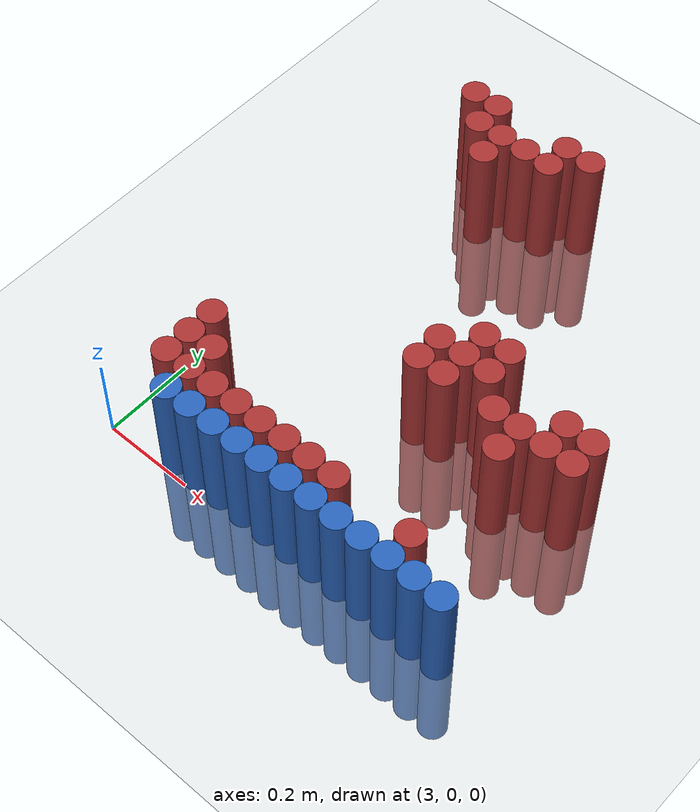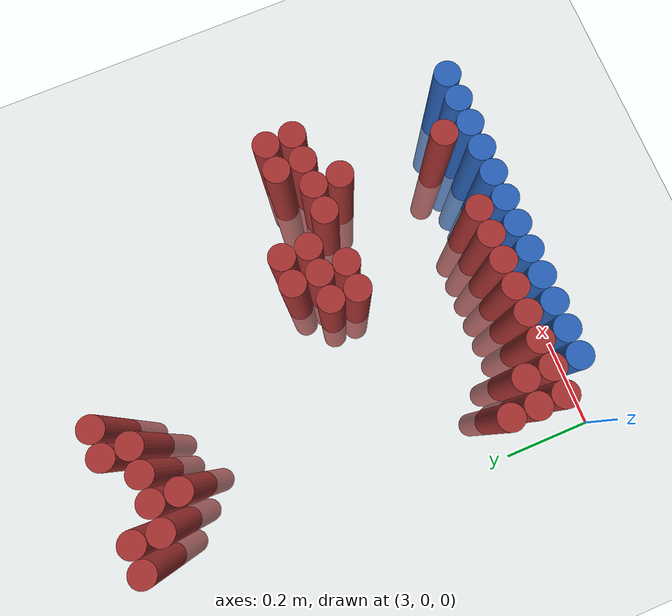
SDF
<sdf version="1.6">
 <world name="default">
  <model name="ground_plane">
   <static>1</static>
   <link name="link">
    <collision name="collision">
     <geometry><plane><normal>0 0 1</normal><size>100 100</size></plane></geometry>
     <surface><friction><ode><mu>100</mu><mu2>50</mu2></ode></friction></surface>
    </collision>
    <visual name="visual">
     <cast_shadows>0</cast_shadows>
     <geometry><plane><normal>0 0 1</normal><size>100 100</size></plane></geometry>
     <material>
      <script><uri>file://media/materials/scripts/gazebo.material</uri><name>Gazebo/Grey</name></script>
     </material>
    </visual>
   </link>
  </model>
  <model name="unit_cylinder_207">
   <static>1</static>
   <pose>3.090000 0.990000 0.000000 0.000000 0.000000 0.000000</pose>
   <link name="link">
    <inertial>
     <mass>1</mass>
     <inertia><ixx>0.145833</ixx><ixy>0</ixy><ixz>0</ixz><iyy>0.145833</iyy><iyz>0</iyz><izz>0.125</izz></inertia>
    </inertial>
    <collision name="collision">
     <geometry><cylinder><radius>0.030000</radius><length>0.5</length></cylinder></geometry>
    </collision>
    <visual name="visual">
     <geometry><cylinder><radius>0.030000</radius><length>0.5</length></cylinder></geometry>
     <material>
      <ambient>0.648000 0.192000 0.192000 1</ambient>
      <diffuse>0.648000 0.192000 0.192000 1</diffuse>
     </material>
     <material>
      <script><name>Gazebo/Grey</name><uri>file://media/materials/scripts/gazebo.material</uri></script>
     </material>
    </visual>
   </link>
  </model>
  <model name="unit_cylinder_208">
   <static>1</static>
   <pose>3.150000 0.990000 0.000000 0.000000 0.000000 0.000000</pose>
   <link name="link">
    <inertial>
     <mass>1</mass>
     <inertia><ixx>0.145833</ixx><ixy>0</ixy><ixz>0</ixz><iyy>0.145833</iyy><iyz>0</iyz><izz>0.125</izz></inertia>
    </inertial>
    <collision name="collision">
     <geometry><cylinder><radius>0.030000</radius><length>0.5</length></cylinder></geometry>
    </collision>
    <visual name="visual">
     <geometry><cylinder><radius>0.030000</radius><length>0.5</length></cylinder></geometry>
     <material>
      <ambient>0.648000 0.192000 0.192000 1</ambient>
      <diffuse>0.648000 0.192000 0.192000 1</diffuse>
     </material>
     <material>
      <script><name>Gazebo/Grey</name><uri>file://media/materials/scripts/gazebo.material</uri></script>
     </material>
    </visual>
   </link>
  </model>
  <model name="unit_cylinder_209">
   <static>1</static>
   <pose>3.330000 0.990000 0.000000 0.000000 0.000000 0.000000</pose>
   <link name="link">
    <inertial>
     <mass>1</mass>
     <inertia><ixx>0.145833</ixx><ixy>0</ixy><ixz>0</ixz><iyy>0.145833</iyy><iyz>0</iyz><izz>0.125</izz></inertia>
    </inertial>
    <collision name="collision">
     <geometry><cylinder><radius>0.030000</radius><length>0.5</length></cylinder></geometry>
    </collision>
    <visual name="visual">
     <geometry><cylinder><radius>0.030000</radius><length>0.5</length></cylinder></geometry>
     <material>
      <ambient>0.648000 0.192000 0.192000 1</ambient>
      <diffuse>0.648000 0.192000 0.192000 1</diffuse>
     </material>
     <material>
      <script><name>Gazebo/Grey</name><uri>file://media/materials/scripts/gazebo.material</uri></script>
     </material>
    </visual>
   </link>
  </model>
  <model name="unit_cylinder_210">
   <static>1</static>
   <pose>3.390000 0.990000 0.000000 0.000000 0.000000 0.000000</pose>
   <link name="link">
    <inertial>
     <mass>1</mass>
     <inertia><ixx>0.145833</ixx><ixy>0</ixy><ixz>0</ixz><iyy>0.145833</iyy><iyz>0</iyz><izz>0.125</izz></inertia>
    </inertial>
    <collision name="collision">
     <geometry><cylinder><radius>0.030000</radius><length>0.5</length></cylinder></geometry>
    </collision>
    <visual name="visual">
     <geometry><cylinder><radius>0.030000</radius><length>0.5</length></cylinder></geometry>
     <material>
      <ambient>0.648000 0.192000 0.192000 1</ambient>
      <diffuse>0.648000 0.192000 0.192000 1</diffuse>
     </material>
     <material>
      <script><name>Gazebo/Grey</name><uri>file://media/materials/scripts/gazebo.material</uri></script>
     </material>
    </visual>
   </link>
  </model>
  <model name="unit_cylinder_214">
   <static>1</static>
   <pose>3.150000 0.930000 0.000000 0.000000 0.000000 0.000000</pose>
   <link name="link">
    <inertial>
     <mass>1</mass>
     <inertia><ixx>0.145833</ixx><ixy>0</ixy><ixz>0</ixz><iyy>0.145833</iyy><iyz>0</iyz><izz>0.125</izz></inertia>
    </inertial>
    <collision name="collision">
     <geometry><cylinder><radius>0.030000</radius><length>0.5</length></cylinder></geometry>
    </collision>
    <visual name="visual">
     <geometry><cylinder><radius>0.030000</radius><length>0.5</length></cylinder></geometry>
     <material>
      <ambient>0.648000 0.192000 0.192000 1</ambient>
      <diffuse>0.648000 0.192000 0.192000 1</diffuse>
     </material>
     <material>
      <script><name>Gazebo/Grey</name><uri>file://media/materials/scripts/gazebo.material</uri></script>
     </material>
    </visual>
   </link>
  </model>
  <model name="unit_cylinder_215">
   <static>1</static>
   <pose>3.210000 0.930000 0.000000 0.000000 0.000000 0.000000</pose>
   <link name="link">
    <inertial>
     <mass>1</mass>
     <inertia><ixx>0.145833</ixx><ixy>0</ixy><ixz>0</ixz><iyy>0.145833</iyy><iyz>0</iyz><izz>0.125</izz></inertia>
    </inertial>
    <collision name="collision">
     <geometry><cylinder><radius>0.030000</radius><length>0.5</length></cylinder></geometry>
    </collision>
    <visual name="visual">
     <geometry><cylinder><radius>0.030000</radius><length>0.5</length></cylinder></geometry>
     <material>
      <ambient>0.648000 0.192000 0.192000 1</ambient>
      <diffuse>0.648000 0.192000 0.192000 1</diffuse>
     </material>
     <material>
      <script><name>Gazebo/Grey</name><uri>file://media/materials/scripts/gazebo.material</uri></script>
     </material>
    </visual>
   </link>
  </model>
  <model name="unit_cylinder_216">
   <static>1</static>
   <pose>3.270000 0.930000 0.000000 0.000000 0.000000 0.000000</pose>
   <link name="link">
    <inertial>
     <mass>1</mass>
     <inertia><ixx>0.145833</ixx><ixy>0</ixy><ixz>0</ixz><iyy>0.145833</iyy><iyz>0</iyz><izz>0.125</izz></inertia>
    </inertial>
    <collision name="collision">
     <geometry><cylinder><radius>0.030000</radius><length>0.5</length></cylinder></geometry>
    </collision>
    <visual name="visual">
     <geometry><cylinder><radius>0.030000</radius><length>0.5</length></cylinder></geometry>
     <material>
      <ambient>0.648000 0.192000 0.192000 1</ambient>
      <diffuse>0.648000 0.192000 0.192000 1</diffuse>
     </material>
     <material>
      <script><name>Gazebo/Grey</name><uri>file://media/materials/scripts/gazebo.material</uri></script>
     </material>
    </visual>
   </link>
  </model>
  <model name="unit_cylinder_217">
   <static>1</static>
   <pose>3.330000 0.930000 0.000000 0.000000 0.000000 0.000000</pose>
   <link name="link">
    <inertial>
     <mass>1</mass>
     <inertia><ixx>0.145833</ixx><ixy>0</ixy><ixz>0</ixz><iyy>0.145833</iyy><iyz>0</iyz><izz>0.125</izz></inertia>
    </inertial>
    <collision name="collision">
     <geometry><cylinder><radius>0.030000</radius><length>0.5</length></cylinder></geometry>
    </collision>
    <visual name="visual">
     <geometry><cylinder><radius>0.030000</radius><length>0.5</length></cylinder></geometry>
     <material>
      <ambient>0.648000 0.192000 0.192000 1</ambient>
      <diffuse>0.648000 0.192000 0.192000 1</diffuse>
     </material>
     <material>
      <script><name>Gazebo/Grey</name><uri>file://media/materials/scripts/gazebo.material</uri></script>
     </material>
    </visual>
   </link>
  </model>
  <model name="unit_cylinder_226">
   <static>1</static>
   <pose>3.210000 0.870000 0.000000 0.000000 0.000000 0.000000</pose>
   <link name="link">
    <inertial>
     <mass>1</mass>
     <inertia><ixx>0.145833</ixx><ixy>0</ixy><ixz>0</ixz><iyy>0.145833</iyy><iyz>0</iyz><izz>0.125</izz></inertia>
    </inertial>
    <collision name="collision">
     <geometry><cylinder><radius>0.030000</radius><length>0.5</length></cylinder></geometry>
    </collision>
    <visual name="visual">
     <geometry><cylinder><radius>0.030000</radius><length>0.5</length></cylinder></geometry>
     <material>
      <ambient>0.648000 0.192000 0.192000 1</ambient>
      <diffuse>0.648000 0.192000 0.192000 1</diffuse>
     </material>
     <material>
      <script><name>Gazebo/Grey</name><uri>file://media/materials/scripts/gazebo.material</uri></script>
     </material>
    </visual>
   </link>
  </model>
  <model name="unit_cylinder_258">
   <static>1</static>
   <pose>3.510000 0.510000 0.000000 0.000000 0.000000 0.000000</pose>
   <link name="link">
    <inertial>
     <mass>1</mass>
     <inertia><ixx>0.145833</ixx><ixy>0</ixy><ixz>0</ixz><iyy>0.145833</iyy><iyz>0</iyz><izz>0.125</izz></inertia>
    </inertial>
    <collision name="collision">
     <geometry><cylinder><radius>0.030000</radius><length>0.5</length></cylinder></geometry>
    </collision>
    <visual name="visual">
     <geometry><cylinder><radius>0.030000</radius><length>0.5</length></cylinder></geometry>
     <material>
      <ambient>0.648000 0.192000 0.192000 1</ambient>
      <diffuse>0.648000 0.192000 0.192000 1</diffuse>
     </material>
     <material>
      <script><name>Gazebo/Grey</name><uri>file://media/materials/scripts/gazebo.material</uri></script>
     </material>
    </visual>
   </link>
  </model>
  <model name="unit_cylinder_259">
   <static>1</static>
   <pose>3.570000 0.510000 0.000000 0.000000 0.000000 0.000000</pose>
   <link name="link">
    <inertial>
     <mass>1</mass>
     <inertia><ixx>0.145833</ixx><ixy>0</ixy><ixz>0</ixz><iyy>0.145833</iyy><iyz>0</iyz><izz>0.125</izz></inertia>
    </inertial>
    <collision name="collision">
     <geometry><cylinder><radius>0.030000</radius><length>0.5</length></cylinder></geometry>
    </collision>
    <visual name="visual">
     <geometry><cylinder><radius>0.030000</radius><length>0.5</length></cylinder></geometry>
     <material>
      <ambient>0.648000 0.192000 0.192000 1</ambient>
      <diffuse>0.648000 0.192000 0.192000 1</diffuse>
     </material>
     <material>
      <script><name>Gazebo/Grey</name><uri>file://media/materials/scripts/gazebo.material</uri></script>
     </material>
    </visual>
   </link>
  </model>
  <model name="unit_cylinder_260">
   <static>1</static>
   <pose>3.450000 0.450000 0.000000 0.000000 0.000000 0.000000</pose>
   <link name="link">
    <inertial>
     <mass>1</mass>
     <inertia><ixx>0.145833</ixx><ixy>0</ixy><ixz>0</ixz><iyy>0.145833</iyy><iyz>0</iyz><izz>0.125</izz></inertia>
    </inertial>
    <collision name="collision">
     <geometry><cylinder><radius>0.030000</radius><length>0.5</length></cylinder></geometry>
    </collision>
    <visual name="visual">
     <geometry><cylinder><radius>0.030000</radius><length>0.5</length></cylinder></geometry>
     <material>
      <ambient>0.648000 0.192000 0.192000 1</ambient>
      <diffuse>0.648000 0.192000 0.192000 1</diffuse>
     </material>
     <material>
      <script><name>Gazebo/Grey</name><uri>file://media/materials/scripts/gazebo.material</uri></script>
     </material>
    </visual>
   </link>
  </model>
  <model name="unit_cylinder_261">
   <static>1</static>
   <pose>3.510000 0.450000 0.000000 0.000000 0.000000 0.000000</pose>
   <link name="link">
    <inertial>
     <mass>1</mass>
     <inertia><ixx>0.145833</ixx><ixy>0</ixy><ixz>0</ixz><iyy>0.145833</iyy><iyz>0</iyz><izz>0.125</izz></inertia>
    </inertial>
    <collision name="collision">
     <geometry><cylinder><radius>0.030000</radius><length>0.5</length></cylinder></geometry>
    </collision>
    <visual name="visual">
     <geometry><cylinder><radius>0.030000</radius><length>0.5</length></cylinder></geometry>
     <material>
      <ambient>0.648000 0.192000 0.192000 1</ambient>
      <diffuse>0.648000 0.192000 0.192000 1</diffuse>
     </material>
     <material>
      <script><name>Gazebo/Grey</name><uri>file://media/materials/scripts/gazebo.material</uri></script>
     </material>
    </visual>
   </link>
  </model>
  <model name="unit_cylinder_262">
   <static>1</static>
   <pose>3.570000 0.450000 0.000000 0.000000 0.000000 0.000000</pose>
   <link name="link">
    <inertial>
     <mass>1</mass>
     <inertia><ixx>0.145833</ixx><ixy>0</ixy><ixz>0</ixz><iyy>0.145833</iyy><iyz>0</iyz><izz>0.125</izz></inertia>
    </inertial>
    <collision name="collision">
     <geometry><cylinder><radius>0.030000</radius><length>0.5</length></cylinder></geometry>
    </collision>
    <visual name="visual">
     <geometry><cylinder><radius>0.030000</radius><length>0.5</length></cylinder></geometry>
     <material>
      <ambient>0.648000 0.192000 0.192000 1</ambient>
      <diffuse>0.648000 0.192000 0.192000 1</diffuse>
     </material>
     <material>
      <script><name>Gazebo/Grey</name><uri>file://media/materials/scripts/gazebo.material</uri></script>
     </material>
    </visual>
   </link>
  </model>
  <model name="unit_cylinder_263">
   <static>1</static>
   <pose>3.750000 0.450000 0.000000 0.000000 0.000000 0.000000</pose>
   <link name="link">
    <inertial>
     <mass>1</mass>
     <inertia><ixx>0.145833</ixx><ixy>0</ixy><ixz>0</ixz><iyy>0.145833</iyy><iyz>0</iyz><izz>0.125</izz></inertia>
    </inertial>
    <collision name="collision">
     <geometry><cylinder><radius>0.030000</radius><length>0.5</length></cylinder></geometry>
    </collision>
    <visual name="visual">
     <geometry><cylinder><radius>0.030000</radius><length>0.5</length></cylinder></geometry>
     <material>
      <ambient>0.648000 0.192000 0.192000 1</ambient>
      <diffuse>0.648000 0.192000 0.192000 1</diffuse>
     </material>
     <material>
      <script><name>Gazebo/Grey</name><uri>file://media/materials/scripts/gazebo.material</uri></script>
     </material>
    </visual>
   </link>
  </model>
  <model name="unit_cylinder_264">
   <static>1</static>
   <pose>3.810000 0.450000 0.000000 0.000000 0.000000 0.000000</pose>
   <link name="link">
    <inertial>
     <mass>1</mass>
     <inertia><ixx>0.145833</ixx><ixy>0</ixy><ixz>0</ixz><iyy>0.145833</iyy><iyz>0</iyz><izz>0.125</izz></inertia>
    </inertial>
    <collision name="collision">
     <geometry><cylinder><radius>0.030000</radius><length>0.5</length></cylinder></geometry>
    </collision>
    <visual name="visual">
     <geometry><cylinder><radius>0.030000</radius><length>0.5</length></cylinder></geometry>
     <material>
      <ambient>0.648000 0.192000 0.192000 1</ambient>
      <diffuse>0.648000 0.192000 0.192000 1</diffuse>
     </material>
     <material>
      <script><name>Gazebo/Grey</name><uri>file://media/materials/scripts/gazebo.material</uri></script>
     </material>
    </visual>
   </link>
  </model>
  <model name="unit_cylinder_265">
   <static>1</static>
   <pose>3.450000 0.390000 0.000000 0.000000 0.000000 0.000000</pose>
   <link name="link">
    <inertial>
     <mass>1</mass>
     <inertia><ixx>0.145833</ixx><ixy>0</ixy><ixz>0</ixz><iyy>0.145833</iyy><iyz>0</iyz><izz>0.125</izz></inertia>
    </inertial>
    <collision name="collision">
     <geometry><cylinder><radius>0.030000</radius><length>0.5</length></cylinder></geometry>
    </collision>
    <visual name="visual">
     <geometry><cylinder><radius>0.030000</radius><length>0.5</length></cylinder></geometry>
     <material>
      <ambient>0.648000 0.192000 0.192000 1</ambient>
      <diffuse>0.648000 0.192000 0.192000 1</diffuse>
     </material>
     <material>
      <script><name>Gazebo/Grey</name><uri>file://media/materials/scripts/gazebo.material</uri></script>
     </material>
    </visual>
   </link>
  </model>
  <model name="unit_cylinder_266">
   <static>1</static>
   <pose>3.510000 0.390000 0.000000 0.000000 0.000000 0.000000</pose>
   <link name="link">
    <inertial>
     <mass>1</mass>
     <inertia><ixx>0.145833</ixx><ixy>0</ixy><ixz>0</ixz><iyy>0.145833</iyy><iyz>0</iyz><izz>0.125</izz></inertia>
    </inertial>
    <collision name="collision">
     <geometry><cylinder><radius>0.030000</radius><length>0.5</length></cylinder></geometry>
    </collision>
    <visual name="visual">
     <geometry><cylinder><radius>0.030000</radius><length>0.5</length></cylinder></geometry>
     <material>
      <ambient>0.648000 0.192000 0.192000 1</ambient>
      <diffuse>0.648000 0.192000 0.192000 1</diffuse>
     </material>
     <material>
      <script><name>Gazebo/Grey</name><uri>file://media/materials/scripts/gazebo.material</uri></script>
     </material>
    </visual>
   </link>
  </model>
  <model name="unit_cylinder_267">
   <static>1</static>
   <pose>3.630000 0.390000 0.000000 0.000000 0.000000 0.000000</pose>
   <link name="link">
    <inertial>
     <mass>1</mass>
     <inertia><ixx>0.145833</ixx><ixy>0</ixy><ixz>0</ixz><iyy>0.145833</iyy><iyz>0</iyz><izz>0.125</izz></inertia>
    </inertial>
    <collision name="collision">
     <geometry><cylinder><radius>0.030000</radius><length>0.5</length></cylinder></geometry>
    </collision>
    <visual name="visual">
     <geometry><cylinder><radius>0.030000</radius><length>0.5</length></cylinder></geometry>
     <material>
      <ambient>0.648000 0.192000 0.192000 1</ambient>
      <diffuse>0.648000 0.192000 0.192000 1</diffuse>
     </material>
     <material>
      <script><name>Gazebo/Grey</name><uri>file://media/materials/scripts/gazebo.material</uri></script>
     </material>
    </visual>
   </link>
  </model>
  <model name="unit_cylinder_268">
   <static>1</static>
   <pose>3.690000 0.390000 0.000000 0.000000 0.000000 0.000000</pose>
   <link name="link">
    <inertial>
     <mass>1</mass>
     <inertia><ixx>0.145833</ixx><ixy>0</ixy><ixz>0</ixz><iyy>0.145833</iyy><iyz>0</iyz><izz>0.125</izz></inertia>
    </inertial>
    <collision name="collision">
     <geometry><cylinder><radius>0.030000</radius><length>0.5</length></cylinder></geometry>
    </collision>
    <visual name="visual">
     <geometry><cylinder><radius>0.030000</radius><length>0.5</length></cylinder></geometry>
     <material>
      <ambient>0.648000 0.192000 0.192000 1</ambient>
      <diffuse>0.648000 0.192000 0.192000 1</diffuse>
     </material>
     <material>
      <script><name>Gazebo/Grey</name><uri>file://media/materials/scripts/gazebo.material</uri></script>
     </material>
    </visual>
   </link>
  </model>
  <model name="unit_cylinder_269">
   <static>1</static>
   <pose>3.750000 0.390000 0.000000 0.000000 0.000000 0.000000</pose>
   <link name="link">
    <inertial>
     <mass>1</mass>
     <inertia><ixx>0.145833</ixx><ixy>0</ixy><ixz>0</ixz><iyy>0.145833</iyy><iyz>0</iyz><izz>0.125</izz></inertia>
    </inertial>
    <collision name="collision">
     <geometry><cylinder><radius>0.030000</radius><length>0.5</length></cylinder></geometry>
    </collision>
    <visual name="visual">
     <geometry><cylinder><radius>0.030000</radius><length>0.5</length></cylinder></geometry>
     <material>
      <ambient>0.648000 0.192000 0.192000 1</ambient>
      <diffuse>0.648000 0.192000 0.192000 1</diffuse>
     </material>
     <material>
      <script><name>Gazebo/Grey</name><uri>file://media/materials/scripts/gazebo.material</uri></script>
     </material>
    </visual>
   </link>
  </model>
  <model name="unit_cylinder_270">
   <static>1</static>
   <pose>3.810000 0.390000 0.000000 0.000000 0.000000 0.000000</pose>
   <link name="link">
    <inertial>
     <mass>1</mass>
     <inertia><ixx>0.145833</ixx><ixy>0</ixy><ixz>0</ixz><iyy>0.145833</iyy><iyz>0</iyz><izz>0.125</izz></inertia>
    </inertial>
    <collision name="collision">
     <geometry><cylinder><radius>0.030000</radius><length>0.5</length></cylinder></geometry>
    </collision>
    <visual name="visual">
     <geometry><cylinder><radius>0.030000</radius><length>0.5</length></cylinder></geometry>
     <material>
      <ambient>0.648000 0.192000 0.192000 1</ambient>
      <diffuse>0.648000 0.192000 0.192000 1</diffuse>
     </material>
     <material>
      <script><name>Gazebo/Grey</name><uri>file://media/materials/scripts/gazebo.material</uri></script>
     </material>
    </visual>
   </link>
  </model>
  <model name="unit_cylinder_271">
   <static>1</static>
   <pose>3.690000 0.330000 0.000000 0.000000 0.000000 0.000000</pose>
   <link name="link">
    <inertial>
     <mass>1</mass>
     <inertia><ixx>0.145833</ixx><ixy>0</ixy><ixz>0</ixz><iyy>0.145833</iyy><iyz>0</iyz><izz>0.125</izz></inertia>
    </inertial>
    <collision name="collision">
     <geometry><cylinder><radius>0.030000</radius><length>0.5</length></cylinder></geometry>
    </collision>
    <visual name="visual">
     <geometry><cylinder><radius>0.030000</radius><length>0.5</length></cylinder></geometry>
     <material>
      <ambient>0.648000 0.192000 0.192000 1</ambient>
      <diffuse>0.648000 0.192000 0.192000 1</diffuse>
     </material>
     <material>
      <script><name>Gazebo/Grey</name><uri>file://media/materials/scripts/gazebo.material</uri></script>
     </material>
    </visual>
   </link>
  </model>
  <model name="unit_cylinder_275">
   <static>1</static>
   <pose>3.090000 0.210000 0.000000 0.000000 0.000000 0.000000</pose>
   <link name="link">
    <inertial>
     <mass>1</mass>
     <inertia><ixx>0.145833</ixx><ixy>0</ixy><ixz>0</ixz><iyy>0.145833</iyy><iyz>0</iyz><izz>0.125</izz></inertia>
    </inertial>
    <collision name="collision">
     <geometry><cylinder><radius>0.030000</radius><length>0.5</length></cylinder></geometry>
    </collision>
    <visual name="visual">
     <geometry><cylinder><radius>0.030000</radius><length>0.5</length></cylinder></geometry>
     <material>
      <ambient>0.648000 0.192000 0.192000 1</ambient>
      <diffuse>0.648000 0.192000 0.192000 1</diffuse>
     </material>
     <material>
      <script><name>Gazebo/Grey</name><uri>file://media/materials/scripts/gazebo.material</uri></script>
     </material>
    </visual>
   </link>
  </model>
  <model name="unit_cylinder_283">
   <static>1</static>
   <pose>3.090000 0.150000 0.000000 0.000000 0.000000 0.000000</pose>
   <link name="link">
    <inertial>
     <mass>1</mass>
     <inertia><ixx>0.145833</ixx><ixy>0</ixy><ixz>0</ixz><iyy>0.145833</iyy><iyz>0</iyz><izz>0.125</izz></inertia>
    </inertial>
    <collision name="collision">
     <geometry><cylinder><radius>0.030000</radius><length>0.5</length></cylinder></geometry>
    </collision>
    <visual name="visual">
     <geometry><cylinder><radius>0.030000</radius><length>0.5</length></cylinder></geometry>
     <material>
      <ambient>0.648000 0.192000 0.192000 1</ambient>
      <diffuse>0.648000 0.192000 0.192000 1</diffuse>
     </material>
     <material>
      <script><name>Gazebo/Grey</name><uri>file://media/materials/scripts/gazebo.material</uri></script>
     </material>
    </visual>
   </link>
  </model>
  <model name="unit_cylinder_284">
   <static>1</static>
   <pose>3.150000 0.150000 0.000000 0.000000 0.000000 0.000000</pose>
   <link name="link">
    <inertial>
     <mass>1</mass>
     <inertia><ixx>0.145833</ixx><ixy>0</ixy><ixz>0</ixz><iyy>0.145833</iyy><iyz>0</iyz><izz>0.125</izz></inertia>
    </inertial>
    <collision name="collision">
     <geometry><cylinder><radius>0.030000</radius><length>0.5</length></cylinder></geometry>
    </collision>
    <visual name="visual">
     <geometry><cylinder><radius>0.030000</radius><length>0.5</length></cylinder></geometry>
     <material>
      <ambient>0.648000 0.192000 0.192000 1</ambient>
      <diffuse>0.648000 0.192000 0.192000 1</diffuse>
     </material>
     <material>
      <script><name>Gazebo/Grey</name><uri>file://media/materials/scripts/gazebo.material</uri></script>
     </material>
    </visual>
   </link>
  </model>
  <model name="unit_cylinder_291">
   <static>1</static>
   <pose>3.090000 0.090000 0.000000 0.000000 0.000000 0.000000</pose>
   <link name="link">
    <inertial>
     <mass>1</mass>
     <inertia><ixx>0.145833</ixx><ixy>0</ixy><ixz>0</ixz><iyy>0.145833</iyy><iyz>0</iyz><izz>0.125</izz></inertia>
    </inertial>
    <collision name="collision">
     <geometry><cylinder><radius>0.030000</radius><length>0.5</length></cylinder></geometry>
    </collision>
    <visual name="visual">
     <geometry><cylinder><radius>0.030000</radius><length>0.5</length></cylinder></geometry>
     <material>
      <ambient>0.648000 0.192000 0.192000 1</ambient>
      <diffuse>0.648000 0.192000 0.192000 1</diffuse>
     </material>
     <material>
      <script><name>Gazebo/Grey</name><uri>file://media/materials/scripts/gazebo.material</uri></script>
     </material>
    </visual>
   </link>
  </model>
  <model name="unit_cylinder_292">
   <static>1</static>
   <pose>3.150000 0.090000 0.000000 0.000000 0.000000 0.000000</pose>
   <link name="link">
    <inertial>
     <mass>1</mass>
     <inertia><ixx>0.145833</ixx><ixy>0</ixy><ixz>0</ixz><iyy>0.145833</iyy><iyz>0</iyz><izz>0.125</izz></inertia>
    </inertial>
    <collision name="collision">
     <geometry><cylinder><radius>0.030000</radius><length>0.5</length></cylinder></geometry>
    </collision>
    <visual name="visual">
     <geometry><cylinder><radius>0.030000</radius><length>0.5</length></cylinder></geometry>
     <material>
      <ambient>0.648000 0.192000 0.192000 1</ambient>
      <diffuse>0.648000 0.192000 0.192000 1</diffuse>
     </material>
     <material>
      <script><name>Gazebo/Grey</name><uri>file://media/materials/scripts/gazebo.material</uri></script>
     </material>
    </visual>
   </link>
  </model>
  <model name="unit_cylinder_293">
   <static>1</static>
   <pose>3.210000 0.090000 0.000000 0.000000 0.000000 0.000000</pose>
   <link name="link">
    <inertial>
     <mass>1</mass>
     <inertia><ixx>0.145833</ixx><ixy>0</ixy><ixz>0</ixz><iyy>0.145833</iyy><iyz>0</iyz><izz>0.125</izz></inertia>
    </inertial>
    <collision name="collision">
     <geometry><cylinder><radius>0.030000</radius><length>0.5</length></cylinder></geometry>
    </collision>
    <visual name="visual">
     <geometry><cylinder><radius>0.030000</radius><length>0.5</length></cylinder></geometry>
     <material>
      <ambient>0.648000 0.192000 0.192000 1</ambient>
      <diffuse>0.648000 0.192000 0.192000 1</diffuse>
     </material>
     <material>
      <script><name>Gazebo/Grey</name><uri>file://media/materials/scripts/gazebo.material</uri></script>
     </material>
    </visual>
   </link>
  </model>
  <model name="unit_cylinder_294">
   <static>1</static>
   <pose>3.270000 0.090000 0.000000 0.000000 0.000000 0.000000</pose>
   <link name="link">
    <inertial>
     <mass>1</mass>
     <inertia><ixx>0.145833</ixx><ixy>0</ixy><ixz>0</ixz><iyy>0.145833</iyy><iyz>0</iyz><izz>0.125</izz></inertia>
    </inertial>
    <collision name="collision">
     <geometry><cylinder><radius>0.030000</radius><length>0.5</length></cylinder></geometry>
    </collision>
    <visual name="visual">
     <geometry><cylinder><radius>0.030000</radius><length>0.5</length></cylinder></geometry>
     <material>
      <ambient>0.648000 0.192000 0.192000 1</ambient>
      <diffuse>0.648000 0.192000 0.192000 1</diffuse>
     </material>
     <material>
      <script><name>Gazebo/Grey</name><uri>file://media/materials/scripts/gazebo.material</uri></script>
     </material>
    </visual>
   </link>
  </model>
  <model name="unit_cylinder_295">
   <static>1</static>
   <pose>3.330000 0.090000 0.000000 0.000000 0.000000 0.000000</pose>
   <link name="link">
    <inertial>
     <mass>1</mass>
     <inertia><ixx>0.145833</ixx><ixy>0</ixy><ixz>0</ixz><iyy>0.145833</iyy><iyz>0</iyz><izz>0.125</izz></inertia>
    </inertial>
    <collision name="collision">
     <geometry><cylinder><radius>0.030000</radius><length>0.5</length></cylinder></geometry>
    </collision>
    <visual name="visual">
     <geometry><cylinder><radius>0.030000</radius><length>0.5</length></cylinder></geometry>
     <material>
      <ambient>0.648000 0.192000 0.192000 1</ambient>
      <diffuse>0.648000 0.192000 0.192000 1</diffuse>
     </material>
     <material>
      <script><name>Gazebo/Grey</name><uri>file://media/materials/scripts/gazebo.material</uri></script>
     </material>
    </visual>
   </link>
  </model>
  <model name="unit_cylinder_296">
   <static>1</static>
   <pose>3.390000 0.090000 0.000000 0.000000 0.000000 0.000000</pose>
   <link name="link">
    <inertial>
     <mass>1</mass>
     <inertia><ixx>0.145833</ixx><ixy>0</ixy><ixz>0</ixz><iyy>0.145833</iyy><iyz>0</iyz><izz>0.125</izz></inertia>
    </inertial>
    <collision name="collision">
     <geometry><cylinder><radius>0.030000</radius><length>0.5</length></cylinder></geometry>
    </collision>
    <visual name="visual">
     <geometry><cylinder><radius>0.030000</radius><length>0.5</length></cylinder></geometry>
     <material>
      <ambient>0.648000 0.192000 0.192000 1</ambient>
      <diffuse>0.648000 0.192000 0.192000 1</diffuse>
     </material>
     <material>
      <script><name>Gazebo/Grey</name><uri>file://media/materials/scripts/gazebo.material</uri></script>
     </material>
    </visual>
   </link>
  </model>
  <model name="unit_cylinder_297">
   <static>1</static>
   <pose>3.450000 0.090000 0.000000 0.000000 0.000000 0.000000</pose>
   <link name="link">
    <inertial>
     <mass>1</mass>
     <inertia><ixx>0.145833</ixx><ixy>0</ixy><ixz>0</ixz><iyy>0.145833</iyy><iyz>0</iyz><izz>0.125</izz></inertia>
    </inertial>
    <collision name="collision">
     <geometry><cylinder><radius>0.030000</radius><length>0.5</length></cylinder></geometry>
    </collision>
    <visual name="visual">
     <geometry><cylinder><radius>0.030000</radius><length>0.5</length></cylinder></geometry>
     <material>
      <ambient>0.648000 0.192000 0.192000 1</ambient>
      <diffuse>0.648000 0.192000 0.192000 1</diffuse>
     </material>
     <material>
      <script><name>Gazebo/Grey</name><uri>file://media/materials/scripts/gazebo.material</uri></script>
     </material>
    </visual>
   </link>
  </model>
  <model name="unit_cylinder_298">
   <static>1</static>
   <pose>3.510000 0.090000 0.000000 0.000000 0.000000 0.000000</pose>
   <link name="link">
    <inertial>
     <mass>1</mass>
     <inertia><ixx>0.145833</ixx><ixy>0</ixy><ixz>0</ixz><iyy>0.145833</iyy><iyz>0</iyz><izz>0.125</izz></inertia>
    </inertial>
    <collision name="collision">
     <geometry><cylinder><radius>0.030000</radius><length>0.5</length></cylinder></geometry>
    </collision>
    <visual name="visual">
     <geometry><cylinder><radius>0.030000</radius><length>0.5</length></cylinder></geometry>
     <material>
      <ambient>0.648000 0.192000 0.192000 1</ambient>
      <diffuse>0.648000 0.192000 0.192000 1</diffuse>
     </material>
     <material>
      <script><name>Gazebo/Grey</name><uri>file://media/materials/scripts/gazebo.material</uri></script>
     </material>
    </visual>
   </link>
  </model>
  <model name="unit_cylinder_299">
   <static>1</static>
   <pose>3.690000 0.090000 0.000000 0.000000 0.000000 0.000000</pose>
   <link name="link">
    <inertial>
     <mass>1</mass>
     <inertia><ixx>0.145833</ixx><ixy>0</ixy><ixz>0</ixz><iyy>0.145833</iyy><iyz>0</iyz><izz>0.125</izz></inertia>
    </inertial>
    <collision name="collision">
     <geometry><cylinder><radius>0.030000</radius><length>0.5</length></cylinder></geometry>
    </collision>
    <visual name="visual">
     <geometry><cylinder><radius>0.030000</radius><length>0.5</length></cylinder></geometry>
     <material>
      <ambient>0.648000 0.192000 0.192000 1</ambient>
      <diffuse>0.648000 0.192000 0.192000 1</diffuse>
     </material>
     <material>
      <script><name>Gazebo/Grey</name><uri>file://media/materials/scripts/gazebo.material</uri></script>
     </material>
    </visual>
   </link>
  </model>
  <model name="unit_cylinder_318">
   <static>1</static>
   <pose>3.150000 0.030000 0.000000 0.000000 0.000000 0.000000</pose>
   <link name="link">
    <inertial>
     <mass>1</mass>
     <inertia><ixx>0.145833</ixx><ixy>0</ixy><ixz>0</ixz><iyy>0.145833</iyy><iyz>0</iyz><izz>0.125</izz></inertia>
    </inertial>
    <collision name="collision">
     <geometry><cylinder><radius>0.030000</radius><length>0.5</length></cylinder></geometry>
    </collision>
    <visual name="visual">
     <geometry><cylinder><radius>0.030000</radius><length>0.5</length></cylinder></geometry>
     <material>
      <ambient>0.152000 0.379000 0.720000 1</ambient>
      <diffuse>0.152000 0.379000 0.720000 1</diffuse>
     </material>
     <material>
      <script><name>Gazebo/Grey</name><uri>file://media/materials/scripts/gazebo.material</uri></script>
     </material>
    </visual>
   </link>
  </model>
  <model name="unit_cylinder_319">
   <static>1</static>
   <pose>3.210000 0.030000 0.000000 0.000000 0.000000 0.000000</pose>
   <link name="link">
    <inertial>
     <mass>1</mass>
     <inertia><ixx>0.145833</ixx><ixy>0</ixy><ixz>0</ixz><iyy>0.145833</iyy><iyz>0</iyz><izz>0.125</izz></inertia>
    </inertial>
    <collision name="collision">
     <geometry><cylinder><radius>0.030000</radius><length>0.5</length></cylinder></geometry>
    </collision>
    <visual name="visual">
     <geometry><cylinder><radius>0.030000</radius><length>0.5</length></cylinder></geometry>
     <material>
      <ambient>0.152000 0.379000 0.720000 1</ambient>
      <diffuse>0.152000 0.379000 0.720000 1</diffuse>
     </material>
     <material>
      <script><name>Gazebo/Grey</name><uri>file://media/materials/scripts/gazebo.material</uri></script>
     </material>
    </visual>
   </link>
  </model>
  <model name="unit_cylinder_320">
   <static>1</static>
   <pose>3.270000 0.030000 0.000000 0.000000 0.000000 0.000000</pose>
   <link name="link">
    <inertial>
     <mass>1</mass>
     <inertia><ixx>0.145833</ixx><ixy>0</ixy><ixz>0</ixz><iyy>0.145833</iyy><iyz>0</iyz><izz>0.125</izz></inertia>
    </inertial>
    <collision name="collision">
     <geometry><cylinder><radius>0.030000</radius><length>0.5</length></cylinder></geometry>
    </collision>
    <visual name="visual">
     <geometry><cylinder><radius>0.030000</radius><length>0.5</length></cylinder></geometry>
     <material>
      <ambient>0.152000 0.379000 0.720000 1</ambient>
      <diffuse>0.152000 0.379000 0.720000 1</diffuse>
     </material>
     <material>
      <script><name>Gazebo/Grey</name><uri>file://media/materials/scripts/gazebo.material</uri></script>
     </material>
    </visual>
   </link>
  </model>
  <model name="unit_cylinder_321">
   <static>1</static>
   <pose>3.330000 0.030000 0.000000 0.000000 0.000000 0.000000</pose>
   <link name="link">
    <inertial>
     <mass>1</mass>
     <inertia><ixx>0.145833</ixx><ixy>0</ixy><ixz>0</ixz><iyy>0.145833</iyy><iyz>0</iyz><izz>0.125</izz></inertia>
    </inertial>
    <collision name="collision">
     <geometry><cylinder><radius>0.030000</radius><length>0.5</length></cylinder></geometry>
    </collision>
    <visual name="visual">
     <geometry><cylinder><radius>0.030000</radius><length>0.5</length></cylinder></geometry>
     <material>
      <ambient>0.152000 0.379000 0.720000 1</ambient>
      <diffuse>0.152000 0.379000 0.720000 1</diffuse>
     </material>
     <material>
      <script><name>Gazebo/Grey</name><uri>file://media/materials/scripts/gazebo.material</uri></script>
     </material>
    </visual>
   </link>
  </model>
  <model name="unit_cylinder_322">
   <static>1</static>
   <pose>3.390000 0.030000 0.000000 0.000000 0.000000 0.000000</pose>
   <link name="link">
    <inertial>
     <mass>1</mass>
     <inertia><ixx>0.145833</ixx><ixy>0</ixy><ixz>0</ixz><iyy>0.145833</iyy><iyz>0</iyz><izz>0.125</izz></inertia>
    </inertial>
    <collision name="collision">
     <geometry><cylinder><radius>0.030000</radius><length>0.5</length></cylinder></geometry>
    </collision>
    <visual name="visual">
     <geometry><cylinder><radius>0.030000</radius><length>0.5</length></cylinder></geometry>
     <material>
      <ambient>0.152000 0.379000 0.720000 1</ambient>
      <diffuse>0.152000 0.379000 0.720000 1</diffuse>
     </material>
     <material>
      <script><name>Gazebo/Grey</name><uri>file://media/materials/scripts/gazebo.material</uri></script>
     </material>
    </visual>
   </link>
  </model>
  <model name="unit_cylinder_323">
   <static>1</static>
   <pose>3.450000 0.030000 0.000000 0.000000 0.000000 0.000000</pose>
   <link name="link">
    <inertial>
     <mass>1</mass>
     <inertia><ixx>0.145833</ixx><ixy>0</ixy><ixz>0</ixz><iyy>0.145833</iyy><iyz>0</iyz><izz>0.125</izz></inertia>
    </inertial>
    <collision name="collision">
     <geometry><cylinder><radius>0.030000</radius><length>0.5</length></cylinder></geometry>
    </collision>
    <visual name="visual">
     <geometry><cylinder><radius>0.030000</radius><length>0.5</length></cylinder></geometry>
     <material>
      <ambient>0.152000 0.379000 0.720000 1</ambient>
      <diffuse>0.152000 0.379000 0.720000 1</diffuse>
     </material>
     <material>
      <script><name>Gazebo/Grey</name><uri>file://media/materials/scripts/gazebo.material</uri></script>
     </material>
    </visual>
   </link>
  </model>
  <model name="unit_cylinder_324">
   <static>1</static>
   <pose>3.510000 0.030000 0.000000 0.000000 0.000000 0.000000</pose>
   <link name="link">
    <inertial>
     <mass>1</mass>
     <inertia><ixx>0.145833</ixx><ixy>0</ixy><ixz>0</ixz><iyy>0.145833</iyy><iyz>0</iyz><izz>0.125</izz></inertia>
    </inertial>
    <collision name="collision">
     <geometry><cylinder><radius>0.030000</radius><length>0.5</length></cylinder></geometry>
    </collision>
    <visual name="visual">
     <geometry><cylinder><radius>0.030000</radius><length>0.5</length></cylinder></geometry>
     <material>
      <ambient>0.152000 0.379000 0.720000 1</ambient>
      <diffuse>0.152000 0.379000 0.720000 1</diffuse>
     </material>
     <material>
      <script><name>Gazebo/Grey</name><uri>file://media/materials/scripts/gazebo.material</uri></script>
     </material>
    </visual>
   </link>
  </model>
  <model name="unit_cylinder_325">
   <static>1</static>
   <pose>3.570000 0.030000 0.000000 0.000000 0.000000 0.000000</pose>
   <link name="link">
    <inertial>
     <mass>1</mass>
     <inertia><ixx>0.145833</ixx><ixy>0</ixy><ixz>0</ixz><iyy>0.145833</iyy><iyz>0</iyz><izz>0.125</izz></inertia>
    </inertial>
    <collision name="collision">
     <geometry><cylinder><radius>0.030000</radius><length>0.5</length></cylinder></geometry>
    </collision>
    <visual name="visual">
     <geometry><cylinder><radius>0.030000</radius><length>0.5</length></cylinder></geometry>
     <material>
      <ambient>0.152000 0.379000 0.720000 1</ambient>
      <diffuse>0.152000 0.379000 0.720000 1</diffuse>
     </material>
     <material>
      <script><name>Gazebo/Grey</name><uri>file://media/materials/scripts/gazebo.material</uri></script>
     </material>
    </visual>
   </link>
  </model>
  <model name="unit_cylinder_326">
   <static>1</static>
   <pose>3.630000 0.030000 0.000000 0.000000 0.000000 0.000000</pose>
   <link name="link">
    <inertial>
     <mass>1</mass>
     <inertia><ixx>0.145833</ixx><ixy>0</ixy><ixz>0</ixz><iyy>0.145833</iyy><iyz>0</iyz><izz>0.125</izz></inertia>
    </inertial>
    <collision name="collision">
     <geometry><cylinder><radius>0.030000</radius><length>0.5</length></cylinder></geometry>
    </collision>
    <visual name="visual">
     <geometry><cylinder><radius>0.030000</radius><length>0.5</length></cylinder></geometry>
     <material>
      <ambient>0.152000 0.379000 0.720000 1</ambient>
      <diffuse>0.152000 0.379000 0.720000 1</diffuse>
     </material>
     <material>
      <script><name>Gazebo/Grey</name><uri>file://media/materials/scripts/gazebo.material</uri></script>
     </material>
    </visual>
   </link>
  </model>
  <model name="unit_cylinder_327">
   <static>1</static>
   <pose>3.690000 0.030000 0.000000 0.000000 0.000000 0.000000</pose>
   <link name="link">
    <inertial>
     <mass>1</mass>
     <inertia><ixx>0.145833</ixx><ixy>0</ixy><ixz>0</ixz><iyy>0.145833</iyy><iyz>0</iyz><izz>0.125</izz></inertia>
    </inertial>
    <collision name="collision">
     <geometry><cylinder><radius>0.030000</radius><length>0.5</length></cylinder></geometry>
    </collision>
    <visual name="visual">
     <geometry><cylinder><radius>0.030000</radius><length>0.5</length></cylinder></geometry>
     <material>
      <ambient>0.152000 0.379000 0.720000 1</ambient>
      <diffuse>0.152000 0.379000 0.720000 1</diffuse>
     </material>
     <material>
      <script><name>Gazebo/Grey</name><uri>file://media/materials/scripts/gazebo.material</uri></script>
     </material>
    </visual>
   </link>
  </model>
  <model name="unit_cylinder_328">
   <static>1</static>
   <pose>3.750000 0.030000 0.000000 0.000000 0.000000 0.000000</pose>
   <link name="link">
    <inertial>
     <mass>1</mass>
     <inertia><ixx>0.145833</ixx><ixy>0</ixy><ixz>0</ixz><iyy>0.145833</iyy><iyz>0</iyz><izz>0.125</izz></inertia>
    </inertial>
    <collision name="collision">
     <geometry><cylinder><radius>0.030000</radius><length>0.5</length></cylinder></geometry>
    </collision>
    <visual name="visual">
     <geometry><cylinder><radius>0.030000</radius><length>0.5</length></cylinder></geometry>
     <material>
      <ambient>0.152000 0.379000 0.720000 1</ambient>
      <diffuse>0.152000 0.379000 0.720000 1</diffuse>
     </material>
     <material>
      <script><name>Gazebo/Grey</name><uri>file://media/materials/scripts/gazebo.material</uri></script>
     </material>
    </visual>
   </link>
  </model>
  <model name="unit_cylinder_329">
   <static>1</static>
   <pose>3.810000 0.030000 0.000000 0.000000 0.000000 0.000000</pose>
   <link name="link">
    <inertial>
     <mass>1</mass>
     <inertia><ixx>0.145833</ixx><ixy>0</ixy><ixz>0</ixz><iyy>0.145833</iyy><iyz>0</iyz><izz>0.125</izz></inertia>
    </inertial>
    <collision name="collision">
     <geometry><cylinder><radius>0.030000</radius><length>0.5</length></cylinder></geometry>
    </collision>
    <visual name="visual">
     <geometry><cylinder><radius>0.030000</radius><length>0.5</length></cylinder></geometry>
     <material>
      <ambient>0.152000 0.379000 0.720000 1</ambient>
      <diffuse>0.152000 0.379000 0.720000 1</diffuse>
     </material>
     <material>
      <script><name>Gazebo/Grey</name><uri>file://media/materials/scripts/gazebo.material</uri></script>
     </material>
    </visual>
   </link>
  </model>
 </world>
</sdf>
